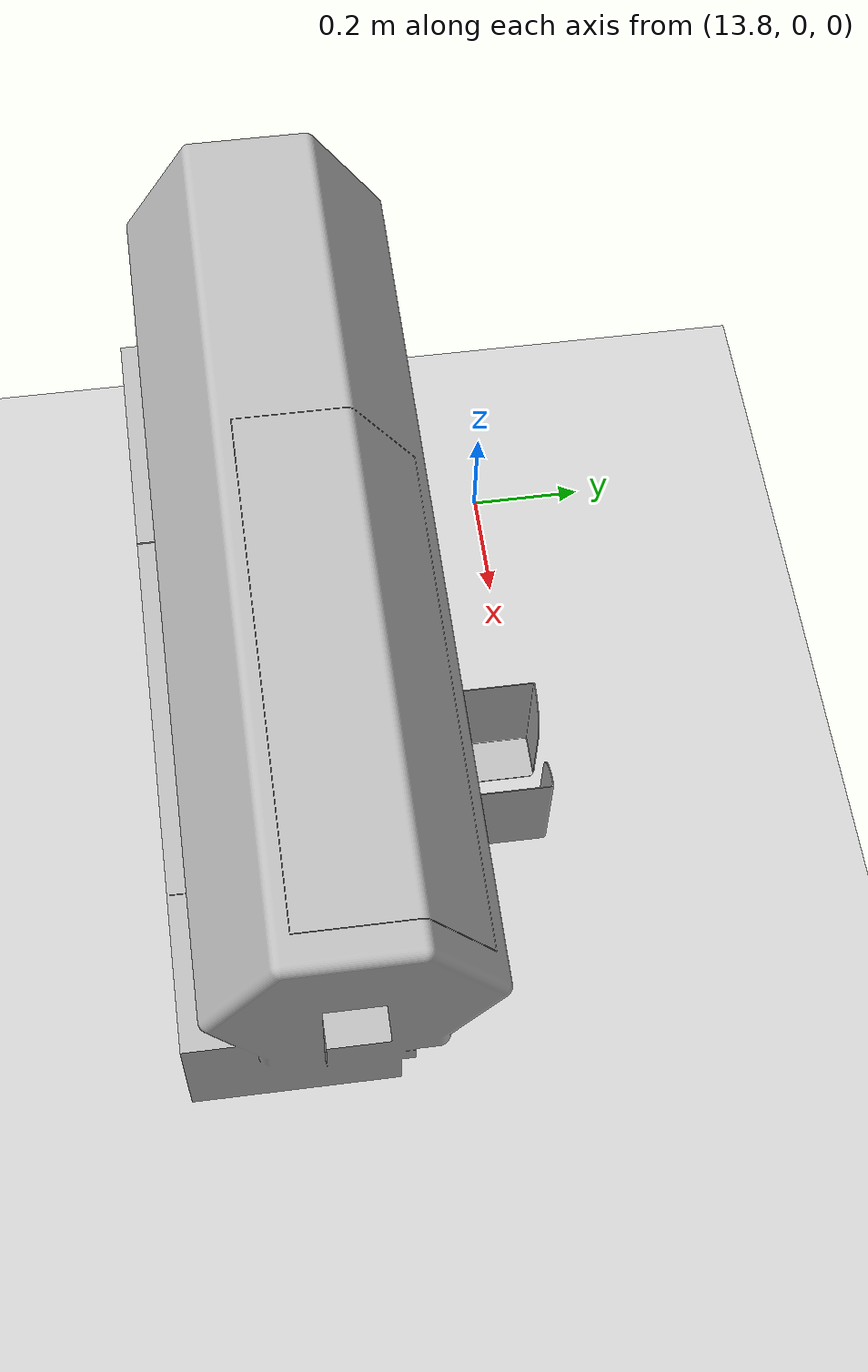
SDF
<sdf version="1.5">
  <world name="default">
   <include>
      <uri>model://ground_plane</uri>
    </include>
    <include>
      <uri>model://sun</uri>
    </include>
    <include>
    	 <uri>model://trico</uri>
    </include>
  </world>
</sdf>

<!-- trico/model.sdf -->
<sdf version="1.5">
    <model name="trico">
      <pose>14.75 -0.25 0  0 0 0</pose>
      <static>true</static>
      <link name="link">
       <light type="directional" name="light_livingroom">
                                <pose>14 0 10 0 0 0</pose>
                                <diffuse>1 1 1 1</diffuse>
          			 <specular>1 1 1 1</specular>
          			 <castshadows>false></castshadows>
                                <direction>0 0 -1</direction>
      </light>
      <visual name="visual">
        <geometry>
          <mesh>
            <uri>model://trico/meshes/trico.dae</uri>
          </mesh>
        </geometry>
      </visual>
      <collision name="collision">
        <geometry>
          <mesh>
            <uri>model://trico/meshes/trico.dae</uri>
          </mesh>
        </geometry>
      </collision>
    </link>
  </model>
</sdf>
